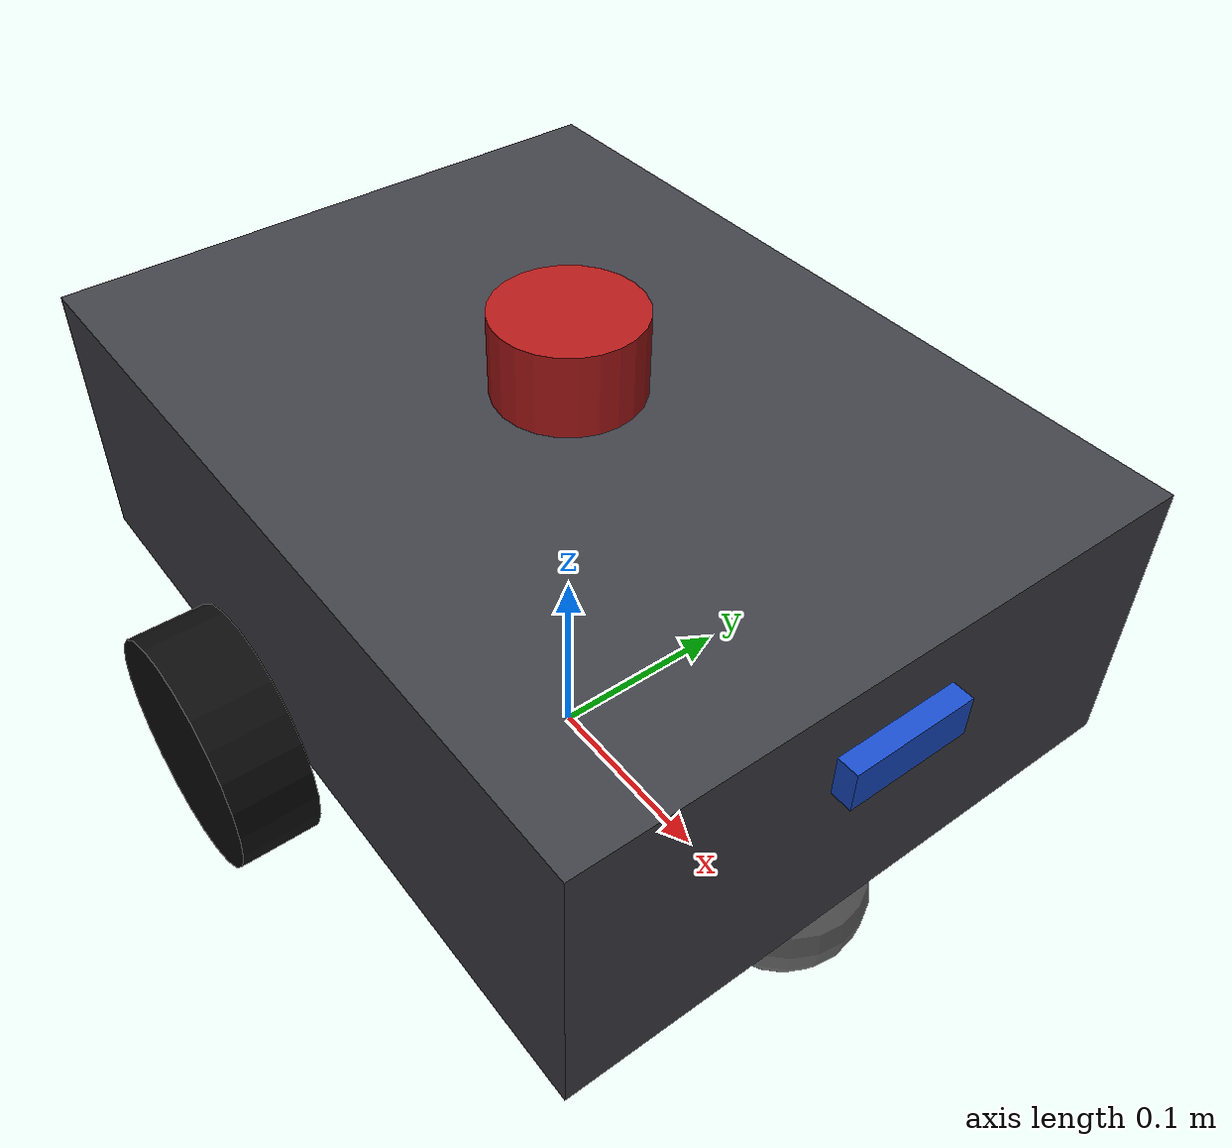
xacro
<?xml version="1.0"?>
<robot name="turtle_bot" xmlns:xacro="http://www.ros.org/wiki/xacro">

  <xacro:include filename="$(find turtle_bot)/urdf/common_properties.xacro"/>

  <!-- ===================== Dimensions ===================== -->
  <xacro:property name="chassis_x" value="0.40"/>
  <xacro:property name="chassis_y" value="0.30"/>
  <xacro:property name="chassis_z" value="0.14"/>
  <xacro:property name="chassis_mass" value="5.0"/>
  <xacro:property name="chassis_z_offset" value="0.09"/>

  <xacro:property name="wheel_radius" value="0.06"/>
  <xacro:property name="wheel_width" value="0.04"/>
  <xacro:property name="wheel_mass" value="0.5"/>
  <xacro:property name="wheel_separation" value="0.34"/>
  <xacro:property name="wheel_x_offset" value="-0.05"/>

  <xacro:property name="caster_radius" value="0.04"/>
  <xacro:property name="caster_mass" value="0.2"/>

  <xacro:property name="lidar_radius" value="0.035"/>
  <xacro:property name="lidar_height" value="0.04"/>

  <!-- ===================== base_footprint ===================== -->
  <link name="base_footprint"/>

  <joint name="base_footprint_joint" type="fixed">
    <parent link="base_footprint"/>
    <child link="base_link"/>
    <origin xyz="0 0 ${wheel_radius}" rpy="0 0 0"/>
  </joint>

  <!-- ===================== Chassis ===================== -->
  <link name="base_link">
    <visual>
      <origin xyz="0 0 ${chassis_z_offset}" rpy="0 0 0"/>
      <geometry>
        <box size="${chassis_x} ${chassis_y} ${chassis_z}"/>
      </geometry>
      <material name="chassis_grey"/>
    </visual>
    <collision>
      <origin xyz="0 0 ${chassis_z_offset}" rpy="0 0 0"/>
      <geometry>
        <box size="${chassis_x} ${chassis_y} ${chassis_z}"/>
      </geometry>
    </collision>
    <xacro:box_inertia mass="${chassis_mass}" x="${chassis_x}" y="${chassis_y}" z="${chassis_z}"/>
  </link>

  <!-- ===================== Wheels ===================== -->
  <xacro:macro name="wheel" params="prefix reflect">
    <link name="wheel_${prefix}_link">
      <visual>
        <origin xyz="0 0 0" rpy="${pi/2} 0 0"/>
        <geometry>
          <cylinder radius="${wheel_radius}" length="${wheel_width}"/>
        </geometry>
        <material name="wheel_black"/>
      </visual>
      <collision>
        <origin xyz="0 0 0" rpy="${pi/2} 0 0"/>
        <geometry>
          <cylinder radius="${wheel_radius}" length="${wheel_width}"/>
        </geometry>
      </collision>
      <xacro:cylinder_inertia mass="${wheel_mass}" r="${wheel_radius}" h="${wheel_width}"/>
    </link>

    <joint name="wheel_${prefix}_joint" type="continuous">
      <parent link="base_link"/>
      <child link="wheel_${prefix}_link"/>
      <origin xyz="${wheel_x_offset} ${reflect * wheel_separation/2} 0" rpy="0 0 0"/>
      <axis xyz="0 1 0"/>
      <dynamics damping="0.1" friction="0.1"/>
    </joint>
  </xacro:macro>

  <xacro:wheel prefix="left" reflect="1"/>
  <xacro:wheel prefix="right" reflect="-1"/>

  <!-- ===================== Caster wheel (front support) ===================== -->
  <link name="caster_link">
    <visual>
      <geometry>
        <sphere radius="${caster_radius}"/>
      </geometry>
      <material name="caster_grey"/>
    </visual>
    <collision>
      <geometry>
        <sphere radius="${caster_radius}"/>
      </geometry>
    </collision>
    <xacro:sphere_inertia mass="${caster_mass}" r="${caster_radius}"/>
  </link>

  <joint name="caster_joint" type="fixed">
    <parent link="base_link"/>
    <child link="caster_link"/>
    <origin xyz="${chassis_x/2 - caster_radius} 0 ${-(wheel_radius - caster_radius)}" rpy="0 0 0"/>
  </joint>

  <!-- ===================== LiDAR ===================== -->
  <link name="lidar_link">
    <visual>
      <geometry>
        <cylinder radius="${lidar_radius}" length="${lidar_height}"/>
      </geometry>
      <material name="lidar_red"/>
    </visual>
    <collision>
      <geometry>
        <cylinder radius="${lidar_radius}" length="${lidar_height}"/>
      </geometry>
    </collision>
    <xacro:cylinder_inertia mass="0.15" r="${lidar_radius}" h="${lidar_height}"/>
  </link>

  <joint name="lidar_joint" type="fixed">
    <parent link="base_link"/>
    <child link="lidar_link"/>
    <origin xyz="0 0 ${chassis_z_offset + chassis_z/2 + lidar_height/2}" rpy="0 0 0"/>
  </joint>

  <!-- ===================== IMU ===================== -->
  <link name="imu_link">
    <visual>
      <geometry><box size="0.02 0.02 0.01"/></geometry>
      <material name="sensor_blue"/>
    </visual>
    <collision>
      <geometry><box size="0.02 0.02 0.01"/></geometry>
    </collision>
    <xacro:box_inertia mass="0.02" x="0.02" y="0.02" z="0.01"/>
  </link>

  <joint name="imu_joint" type="fixed">
    <parent link="base_link"/>
    <child link="imu_link"/>
    <origin xyz="0 0 ${chassis_z_offset}" rpy="0 0 0"/>
  </joint>

  <!-- ===================== Camera ===================== -->
  <link name="camera_link">
    <visual>
      <geometry><box size="0.02 0.06 0.02"/></geometry>
      <material name="sensor_blue"/>
    </visual>
    <collision>
      <geometry><box size="0.02 0.06 0.02"/></geometry>
    </collision>
    <xacro:box_inertia mass="0.05" x="0.02" y="0.06" z="0.02"/>
  </link>

  <joint name="camera_joint" type="fixed">
    <parent link="base_link"/>
    <child link="camera_link"/>
    <origin xyz="${chassis_x/2} 0 ${chassis_z_offset + 0.03}" rpy="0 0 0"/>
  </joint>

  <xacro:include filename="$(find turtle_bot)/urdf/turtle_bot.gazebo.xacro"/>

</robot>

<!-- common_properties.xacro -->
<robot xmlns:xacro="http://www.ros.org/wiki/xacro">

  <material name="chassis_grey"><color rgba="0.25 0.25 0.28 1.0"/></material>
  <material name="wheel_black"><color rgba="0.05 0.05 0.05 1.0"/></material>
  <material name="caster_grey"><color rgba="0.4 0.4 0.4 1.0"/></material>
  <material name="lidar_red"><color rgba="0.7 0.1 0.1 1.0"/></material>
  <material name="sensor_blue"><color rgba="0.1 0.3 0.8 1.0"/></material>

  <xacro:macro name="box_inertia" params="mass x y z">
    <inertial>
      <mass value="${mass}"/>
      <inertia
        ixx="${(1/12) * mass * (y*y + z*z)}" ixy="0.0" ixz="0.0"
        iyy="${(1/12) * mass * (x*x + z*z)}" iyz="0.0"
        izz="${(1/12) * mass * (x*x + y*y)}"/>
    </inertial>
  </xacro:macro>

  <xacro:macro name="cylinder_inertia" params="mass r h">
    <inertial>
      <mass value="${mass}"/>
      <inertia
        ixx="${(1/12) * mass * (3*r*r + h*h)}" ixy="0.0" ixz="0.0"
        iyy="${(1/12) * mass * (3*r*r + h*h)}" iyz="0.0"
        izz="${0.5 * mass * r * r}"/>
    </inertial>
  </xacro:macro>

  <xacro:macro name="sphere_inertia" params="mass r">
    <inertial>
      <mass value="${mass}"/>
      <inertia
        ixx="${0.4 * mass * r * r}" ixy="0.0" ixz="0.0"
        iyy="${0.4 * mass * r * r}" iyz="0.0"
        izz="${0.4 * mass * r * r}"/>
    </inertial>
  </xacro:macro>

</robot>
